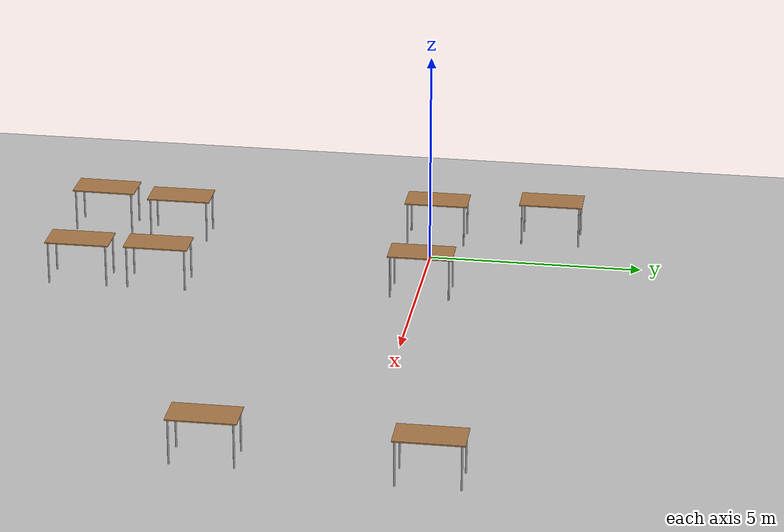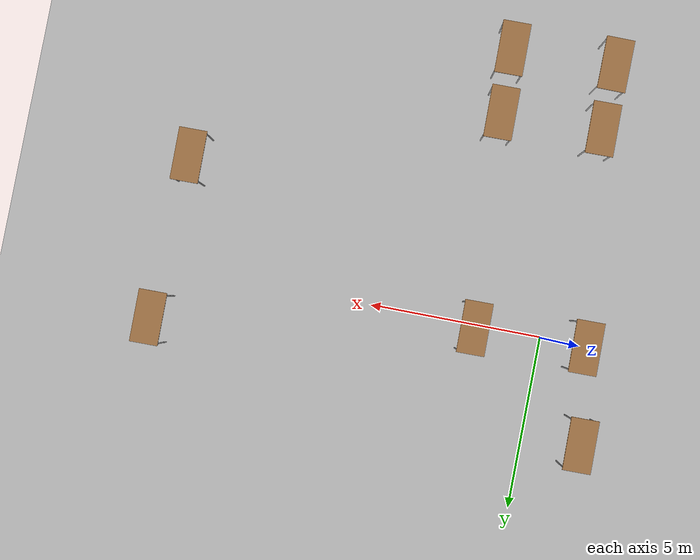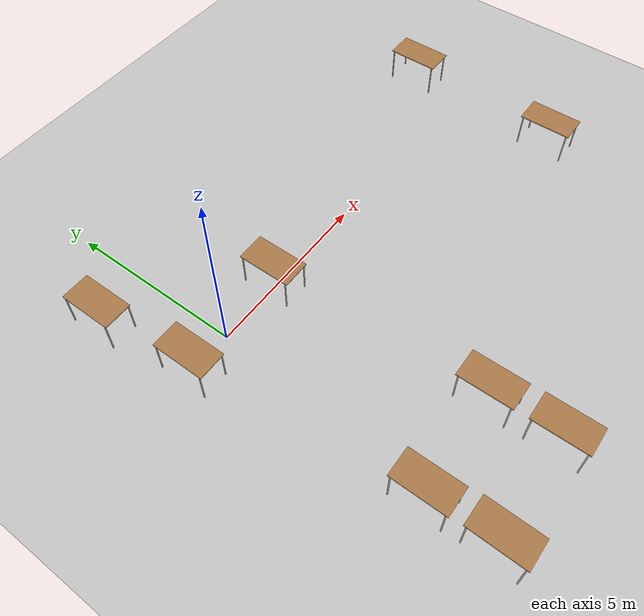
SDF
<sdf version="1.7">
 <world name="default">
  <model name="ground_plane">
   <static>1</static>
   <link name="link">
    <collision name="collision">
     <geometry><plane><normal>0 0 1</normal><size>100 100</size></plane></geometry>
     <surface><friction><ode><mu>100</mu><mu2>50</mu2></ode></friction></surface>
    </collision>
    <visual name="visual">
     <cast_shadows>0</cast_shadows>
     <geometry><plane><normal>0 0 1</normal><size>100 100</size></plane></geometry>
     <material>
      <script><uri>file://media/materials/scripts/gazebo.material</uri><name>Gazebo/Grey</name></script>
     </material>
    </visual>
   </link>
  </model>
  <model name="table_clone_4">
   <static>1</static>
   <link name="link">
    <collision name="surface">
     <pose>0 0 1 0 -0 0</pose>
     <geometry><box><size>1.5 0.8 0.03</size></box></geometry>
     <surface><friction><ode><mu>0.6</mu><mu2>0.6</mu2></ode></friction></surface>
    </collision>
    <visual name="visual1">
     <pose>0 0 1 0 -0 0</pose>
     <geometry><box><size>1.5 0.8 0.03</size></box></geometry>
     <material>
      <script><uri>file://media/materials/scripts/gazebo.material</uri><name>Gazebo/Wood</name></script>
     </material>
    </visual>
    <collision name="front_left_leg">
     <pose>0.68 0.38 0.5 0 -0 0</pose>
     <geometry><cylinder><radius>0.02</radius><length>1</length></cylinder></geometry>
    </collision>
    <visual name="front_left_leg">
     <pose>0.68 0.38 0.5 0 -0 0</pose>
     <geometry><cylinder><radius>0.02</radius><length>1</length></cylinder></geometry>
     <material>
      <script><uri>file://media/materials/scripts/gazebo.material</uri><name>Gazebo/Grey</name></script>
     </material>
    </visual>
    <collision name="front_right_leg">
     <pose>0.68 -0.38 0.5 0 -0 0</pose>
     <geometry><cylinder><radius>0.02</radius><length>1</length></cylinder></geometry>
    </collision>
    <visual name="front_right_leg">
     <pose>0.68 -0.38 0.5 0 -0 0</pose>
     <geometry><cylinder><radius>0.02</radius><length>1</length></cylinder></geometry>
     <material>
      <script><uri>file://media/materials/scripts/gazebo.material</uri><name>Gazebo/Grey</name></script>
     </material>
    </visual>
    <collision name="back_right_leg">
     <pose>-0.68 -0.38 0.5 0 -0 0</pose>
     <geometry><cylinder><radius>0.02</radius><length>1</length></cylinder></geometry>
    </collision>
    <visual name="back_right_leg">
     <pose>-0.68 -0.38 0.5 0 -0 0</pose>
     <geometry><cylinder><radius>0.02</radius><length>1</length></cylinder></geometry>
     <material>
      <script><uri>file://media/materials/scripts/gazebo.material</uri><name>Gazebo/Grey</name></script>
     </material>
    </visual>
    <collision name="back_left_leg">
     <pose>-0.68 0.38 0.5 0 -0 0</pose>
     <geometry><cylinder><radius>0.02</radius><length>1</length></cylinder></geometry>
    </collision>
    <visual name="back_left_leg">
     <pose>-0.68 0.38 0.5 0 -0 0</pose>
     <geometry><cylinder><radius>0.02</radius><length>1</length></cylinder></geometry>
     <material>
      <script><uri>file://media/materials/scripts/gazebo.material</uri><name>Gazebo/Grey</name></script>
     </material>
    </visual>
   </link>
   <pose>-0.492855 -7.93316 0.109475 0 0 -1.57944</pose>
  </model>
  <model name="table_clone_5">
   <static>1</static>
   <link name="link">
    <collision name="surface">
     <pose>0 0 1 0 -0 0</pose>
     <geometry><box><size>1.5 0.8 0.03</size></box></geometry>
     <surface><friction><ode><mu>0.6</mu><mu2>0.6</mu2></ode></friction></surface>
    </collision>
    <visual name="visual1">
     <pose>0 0 1 0 -0 0</pose>
     <geometry><box><size>1.5 0.8 0.03</size></box></geometry>
     <material>
      <script><uri>file://media/materials/scripts/gazebo.material</uri><name>Gazebo/Wood</name></script>
     </material>
    </visual>
    <collision name="front_left_leg">
     <pose>0.68 0.38 0.5 0 -0 0</pose>
     <geometry><cylinder><radius>0.02</radius><length>1</length></cylinder></geometry>
    </collision>
    <visual name="front_left_leg">
     <pose>0.68 0.38 0.5 0 -0 0</pose>
     <geometry><cylinder><radius>0.02</radius><length>1</length></cylinder></geometry>
     <material>
      <script><uri>file://media/materials/scripts/gazebo.material</uri><name>Gazebo/Grey</name></script>
     </material>
    </visual>
    <collision name="front_right_leg">
     <pose>0.68 -0.38 0.5 0 -0 0</pose>
     <geometry><cylinder><radius>0.02</radius><length>1</length></cylinder></geometry>
    </collision>
    <visual name="front_right_leg">
     <pose>0.68 -0.38 0.5 0 -0 0</pose>
     <geometry><cylinder><radius>0.02</radius><length>1</length></cylinder></geometry>
     <material>
      <script><uri>file://media/materials/scripts/gazebo.material</uri><name>Gazebo/Grey</name></script>
     </material>
    </visual>
    <collision name="back_right_leg">
     <pose>-0.68 -0.38 0.5 0 -0 0</pose>
     <geometry><cylinder><radius>0.02</radius><length>1</length></cylinder></geometry>
    </collision>
    <visual name="back_right_leg">
     <pose>-0.68 -0.38 0.5 0 -0 0</pose>
     <geometry><cylinder><radius>0.02</radius><length>1</length></cylinder></geometry>
     <material>
      <script><uri>file://media/materials/scripts/gazebo.material</uri><name>Gazebo/Grey</name></script>
     </material>
    </visual>
    <collision name="back_left_leg">
     <pose>-0.68 0.38 0.5 0 -0 0</pose>
     <geometry><cylinder><radius>0.02</radius><length>1</length></cylinder></geometry>
    </collision>
    <visual name="back_left_leg">
     <pose>-0.68 0.38 0.5 0 -0 0</pose>
     <geometry><cylinder><radius>0.02</radius><length>1</length></cylinder></geometry>
     <material>
      <script><uri>file://media/materials/scripts/gazebo.material</uri><name>Gazebo/Grey</name></script>
     </material>
    </visual>
   </link>
   <pose>2.42405 -7.87532 0 0 0 -1.56324</pose>
  </model>
  <model name="table_clone_5_clone">
   <static>1</static>
   <link name="link">
    <collision name="surface">
     <pose>0 0 1 0 -0 0</pose>
     <geometry><box><size>1.5 0.8 0.03</size></box></geometry>
     <surface><friction><ode><mu>0.6</mu><mu2>0.6</mu2></ode></friction></surface>
    </collision>
    <visual name="visual1">
     <pose>0 0 1 0 -0 0</pose>
     <geometry><box><size>1.5 0.8 0.03</size></box></geometry>
     <material>
      <script><uri>file://media/materials/scripts/gazebo.material</uri><name>Gazebo/Wood</name></script>
     </material>
    </visual>
    <collision name="front_left_leg">
     <pose>0.68 0.38 0.5 0 -0 0</pose>
     <geometry><cylinder><radius>0.02</radius><length>1</length></cylinder></geometry>
    </collision>
    <visual name="front_left_leg">
     <pose>0.68 0.38 0.5 0 -0 0</pose>
     <geometry><cylinder><radius>0.02</radius><length>1</length></cylinder></geometry>
     <material>
      <script><uri>file://media/materials/scripts/gazebo.material</uri><name>Gazebo/Grey</name></script>
     </material>
    </visual>
    <collision name="front_right_leg">
     <pose>0.68 -0.38 0.5 0 -0 0</pose>
     <geometry><cylinder><radius>0.02</radius><length>1</length></cylinder></geometry>
    </collision>
    <visual name="front_right_leg">
     <pose>0.68 -0.38 0.5 0 -0 0</pose>
     <geometry><cylinder><radius>0.02</radius><length>1</length></cylinder></geometry>
     <material>
      <script><uri>file://media/materials/scripts/gazebo.material</uri><name>Gazebo/Grey</name></script>
     </material>
    </visual>
    <collision name="back_right_leg">
     <pose>-0.68 -0.38 0.5 0 -0 0</pose>
     <geometry><cylinder><radius>0.02</radius><length>1</length></cylinder></geometry>
    </collision>
    <visual name="back_right_leg">
     <pose>-0.68 -0.38 0.5 0 -0 0</pose>
     <geometry><cylinder><radius>0.02</radius><length>1</length></cylinder></geometry>
     <material>
      <script><uri>file://media/materials/scripts/gazebo.material</uri><name>Gazebo/Grey</name></script>
     </material>
    </visual>
    <collision name="back_left_leg">
     <pose>-0.68 0.38 0.5 0 -0 0</pose>
     <geometry><cylinder><radius>0.02</radius><length>1</length></cylinder></geometry>
    </collision>
    <visual name="back_left_leg">
     <pose>-0.68 0.38 0.5 0 -0 0</pose>
     <geometry><cylinder><radius>0.02</radius><length>1</length></cylinder></geometry>
     <material>
      <script><uri>file://media/materials/scripts/gazebo.material</uri><name>Gazebo/Grey</name></script>
     </material>
    </visual>
   </link>
   <pose>2.39012 -6.02539 0 0 0 -1.56324</pose>
  </model>
  <model name="table_clone_5_clone_0">
   <static>1</static>
   <link name="link">
    <collision name="surface">
     <pose>0 0 1 0 -0 0</pose>
     <geometry><box><size>1.5 0.8 0.03</size></box></geometry>
     <surface><friction><ode><mu>0.6</mu><mu2>0.6</mu2></ode></friction></surface>
    </collision>
    <visual name="visual1">
     <pose>0 0 1 0 -0 0</pose>
     <geometry><box><size>1.5 0.8 0.03</size></box></geometry>
     <material>
      <script><uri>file://media/materials/scripts/gazebo.material</uri><name>Gazebo/Wood</name></script>
     </material>
    </visual>
    <collision name="front_left_leg">
     <pose>0.68 0.38 0.5 0 -0 0</pose>
     <geometry><cylinder><radius>0.02</radius><length>1</length></cylinder></geometry>
    </collision>
    <visual name="front_left_leg">
     <pose>0.68 0.38 0.5 0 -0 0</pose>
     <geometry><cylinder><radius>0.02</radius><length>1</length></cylinder></geometry>
     <material>
      <script><uri>file://media/materials/scripts/gazebo.material</uri><name>Gazebo/Grey</name></script>
     </material>
    </visual>
    <collision name="front_right_leg">
     <pose>0.68 -0.38 0.5 0 -0 0</pose>
     <geometry><cylinder><radius>0.02</radius><length>1</length></cylinder></geometry>
    </collision>
    <visual name="front_right_leg">
     <pose>0.68 -0.38 0.5 0 -0 0</pose>
     <geometry><cylinder><radius>0.02</radius><length>1</length></cylinder></geometry>
     <material>
      <script><uri>file://media/materials/scripts/gazebo.material</uri><name>Gazebo/Grey</name></script>
     </material>
    </visual>
    <collision name="back_right_leg">
     <pose>-0.68 -0.38 0.5 0 -0 0</pose>
     <geometry><cylinder><radius>0.02</radius><length>1</length></cylinder></geometry>
    </collision>
    <visual name="back_right_leg">
     <pose>-0.68 -0.38 0.5 0 -0 0</pose>
     <geometry><cylinder><radius>0.02</radius><length>1</length></cylinder></geometry>
     <material>
      <script><uri>file://media/materials/scripts/gazebo.material</uri><name>Gazebo/Grey</name></script>
     </material>
    </visual>
    <collision name="back_left_leg">
     <pose>-0.68 0.38 0.5 0 -0 0</pose>
     <geometry><cylinder><radius>0.02</radius><length>1</length></cylinder></geometry>
    </collision>
    <visual name="back_left_leg">
     <pose>-0.68 0.38 0.5 0 -0 0</pose>
     <geometry><cylinder><radius>0.02</radius><length>1</length></cylinder></geometry>
     <material>
      <script><uri>file://media/materials/scripts/gazebo.material</uri><name>Gazebo/Grey</name></script>
     </material>
    </visual>
   </link>
   <pose>-0.50173 -6.10953 0 0 0 -1.56324</pose>
  </model>
  <model name="table_clone_5_clone_clone">
   <static>1</static>
   <link name="link">
    <collision name="surface">
     <pose>0 0 1 0 -0 0</pose>
     <geometry><box><size>1.5 0.8 0.03</size></box></geometry>
     <surface><friction><ode><mu>0.6</mu><mu2>0.6</mu2></ode></friction></surface>
    </collision>
    <visual name="visual1">
     <pose>0 0 1 0 -0 0</pose>
     <geometry><box><size>1.5 0.8 0.03</size></box></geometry>
     <material>
      <script><uri>file://media/materials/scripts/gazebo.material</uri><name>Gazebo/Wood</name></script>
     </material>
    </visual>
    <collision name="front_left_leg">
     <pose>0.68 0.38 0.5 0 -0 0</pose>
     <geometry><cylinder><radius>0.02</radius><length>1</length></cylinder></geometry>
    </collision>
    <visual name="front_left_leg">
     <pose>0.68 0.38 0.5 0 -0 0</pose>
     <geometry><cylinder><radius>0.02</radius><length>1</length></cylinder></geometry>
     <material>
      <script><uri>file://media/materials/scripts/gazebo.material</uri><name>Gazebo/Grey</name></script>
     </material>
    </visual>
    <collision name="front_right_leg">
     <pose>0.68 -0.38 0.5 0 -0 0</pose>
     <geometry><cylinder><radius>0.02</radius><length>1</length></cylinder></geometry>
    </collision>
    <visual name="front_right_leg">
     <pose>0.68 -0.38 0.5 0 -0 0</pose>
     <geometry><cylinder><radius>0.02</radius><length>1</length></cylinder></geometry>
     <material>
      <script><uri>file://media/materials/scripts/gazebo.material</uri><name>Gazebo/Grey</name></script>
     </material>
    </visual>
    <collision name="back_right_leg">
     <pose>-0.68 -0.38 0.5 0 -0 0</pose>
     <geometry><cylinder><radius>0.02</radius><length>1</length></cylinder></geometry>
    </collision>
    <visual name="back_right_leg">
     <pose>-0.68 -0.38 0.5 0 -0 0</pose>
     <geometry><cylinder><radius>0.02</radius><length>1</length></cylinder></geometry>
     <material>
      <script><uri>file://media/materials/scripts/gazebo.material</uri><name>Gazebo/Grey</name></script>
     </material>
    </visual>
    <collision name="back_left_leg">
     <pose>-0.68 0.38 0.5 0 -0 0</pose>
     <geometry><cylinder><radius>0.02</radius><length>1</length></cylinder></geometry>
    </collision>
    <visual name="back_left_leg">
     <pose>-0.68 0.38 0.5 0 -0 0</pose>
     <geometry><cylinder><radius>0.02</radius><length>1</length></cylinder></geometry>
     <material>
      <script><uri>file://media/materials/scripts/gazebo.material</uri><name>Gazebo/Grey</name></script>
     </material>
    </visual>
   </link>
   <pose>10.8155 -3.18276 0 0 0 -1.56324</pose>
  </model>
  <model name="table_clone_5_clone_clone_clone">
   <static>1</static>
   <link name="link">
    <collision name="surface">
     <pose>0 0 1 0 -0 0</pose>
     <geometry><box><size>1.5 0.8 0.03</size></box></geometry>
     <surface><friction><ode><mu>0.6</mu><mu2>0.6</mu2></ode></friction></surface>
    </collision>
    <visual name="visual1">
     <pose>0 0 1 0 -0 0</pose>
     <geometry><box><size>1.5 0.8 0.03</size></box></geometry>
     <material>
      <script><uri>file://media/materials/scripts/gazebo.material</uri><name>Gazebo/Wood</name></script>
     </material>
    </visual>
    <collision name="front_left_leg">
     <pose>0.68 0.38 0.5 0 -0 0</pose>
     <geometry><cylinder><radius>0.02</radius><length>1</length></cylinder></geometry>
    </collision>
    <visual name="front_left_leg">
     <pose>0.68 0.38 0.5 0 -0 0</pose>
     <geometry><cylinder><radius>0.02</radius><length>1</length></cylinder></geometry>
     <material>
      <script><uri>file://media/materials/scripts/gazebo.material</uri><name>Gazebo/Grey</name></script>
     </material>
    </visual>
    <collision name="front_right_leg">
     <pose>0.68 -0.38 0.5 0 -0 0</pose>
     <geometry><cylinder><radius>0.02</radius><length>1</length></cylinder></geometry>
    </collision>
    <visual name="front_right_leg">
     <pose>0.68 -0.38 0.5 0 -0 0</pose>
     <geometry><cylinder><radius>0.02</radius><length>1</length></cylinder></geometry>
     <material>
      <script><uri>file://media/materials/scripts/gazebo.material</uri><name>Gazebo/Grey</name></script>
     </material>
    </visual>
    <collision name="back_right_leg">
     <pose>-0.68 -0.38 0.5 0 -0 0</pose>
     <geometry><cylinder><radius>0.02</radius><length>1</length></cylinder></geometry>
    </collision>
    <visual name="back_right_leg">
     <pose>-0.68 -0.38 0.5 0 -0 0</pose>
     <geometry><cylinder><radius>0.02</radius><length>1</length></cylinder></geometry>
     <material>
      <script><uri>file://media/materials/scripts/gazebo.material</uri><name>Gazebo/Grey</name></script>
     </material>
    </visual>
    <collision name="back_left_leg">
     <pose>-0.68 0.38 0.5 0 -0 0</pose>
     <geometry><cylinder><radius>0.02</radius><length>1</length></cylinder></geometry>
    </collision>
    <visual name="back_left_leg">
     <pose>-0.68 0.38 0.5 0 -0 0</pose>
     <geometry><cylinder><radius>0.02</radius><length>1</length></cylinder></geometry>
     <material>
      <script><uri>file://media/materials/scripts/gazebo.material</uri><name>Gazebo/Grey</name></script>
     </material>
    </visual>
   </link>
   <pose>11.0448 1.4975 0 0 0 -1.56324</pose>
  </model>
  <model name="table_clone_5_clone_clone_clone_0">
   <static>1</static>
   <link name="link">
    <collision name="surface">
     <pose>0 0 1 0 -0 0</pose>
     <geometry><box><size>1.5 0.8 0.03</size></box></geometry>
     <surface><friction><ode><mu>0.6</mu><mu2>0.6</mu2></ode></friction></surface>
    </collision>
    <visual name="visual1">
     <pose>0 0 1 0 -0 0</pose>
     <geometry><box><size>1.5 0.8 0.03</size></box></geometry>
     <material>
      <script><uri>file://media/materials/scripts/gazebo.material</uri><name>Gazebo/Wood</name></script>
     </material>
    </visual>
    <collision name="front_left_leg">
     <pose>0.68 0.38 0.5 0 -0 0</pose>
     <geometry><cylinder><radius>0.02</radius><length>1</length></cylinder></geometry>
    </collision>
    <visual name="front_left_leg">
     <pose>0.68 0.38 0.5 0 -0 0</pose>
     <geometry><cylinder><radius>0.02</radius><length>1</length></cylinder></geometry>
     <material>
      <script><uri>file://media/materials/scripts/gazebo.material</uri><name>Gazebo/Grey</name></script>
     </material>
    </visual>
    <collision name="front_right_leg">
     <pose>0.68 -0.38 0.5 0 -0 0</pose>
     <geometry><cylinder><radius>0.02</radius><length>1</length></cylinder></geometry>
    </collision>
    <visual name="front_right_leg">
     <pose>0.68 -0.38 0.5 0 -0 0</pose>
     <geometry><cylinder><radius>0.02</radius><length>1</length></cylinder></geometry>
     <material>
      <script><uri>file://media/materials/scripts/gazebo.material</uri><name>Gazebo/Grey</name></script>
     </material>
    </visual>
    <collision name="back_right_leg">
     <pose>-0.68 -0.38 0.5 0 -0 0</pose>
     <geometry><cylinder><radius>0.02</radius><length>1</length></cylinder></geometry>
    </collision>
    <visual name="back_right_leg">
     <pose>-0.68 -0.38 0.5 0 -0 0</pose>
     <geometry><cylinder><radius>0.02</radius><length>1</length></cylinder></geometry>
     <material>
      <script><uri>file://media/materials/scripts/gazebo.material</uri><name>Gazebo/Grey</name></script>
     </material>
    </visual>
    <collision name="back_left_leg">
     <pose>-0.68 0.38 0.5 0 -0 0</pose>
     <geometry><cylinder><radius>0.02</radius><length>1</length></cylinder></geometry>
    </collision>
    <visual name="back_left_leg">
     <pose>-0.68 0.38 0.5 0 -0 0</pose>
     <geometry><cylinder><radius>0.02</radius><length>1</length></cylinder></geometry>
     <material>
      <script><uri>file://media/materials/scripts/gazebo.material</uri><name>Gazebo/Grey</name></script>
     </material>
    </visual>
   </link>
   <pose>-1.16663 0.0265 0 0 0 -1.56324</pose>
  </model>
  <model name="table_clone_5_clone_clone_clone_1">
   <static>1</static>
   <link name="link">
    <collision name="surface">
     <pose>0 0 1 0 -0 0</pose>
     <geometry><box><size>1.5 0.8 0.03</size></box></geometry>
     <surface><friction><ode><mu>0.6</mu><mu2>0.6</mu2></ode></friction></surface>
    </collision>
    <visual name="visual1">
     <pose>0 0 1 0 -0 0</pose>
     <geometry><box><size>1.5 0.8 0.03</size></box></geometry>
     <material>
      <script><uri>file://media/materials/scripts/gazebo.material</uri><name>Gazebo/Wood</name></script>
     </material>
    </visual>
    <collision name="front_left_leg">
     <pose>0.68 0.38 0.5 0 -0 0</pose>
     <geometry><cylinder><radius>0.02</radius><length>1</length></cylinder></geometry>
    </collision>
    <visual name="front_left_leg">
     <pose>0.68 0.38 0.5 0 -0 0</pose>
     <geometry><cylinder><radius>0.02</radius><length>1</length></cylinder></geometry>
     <material>
      <script><uri>file://media/materials/scripts/gazebo.material</uri><name>Gazebo/Grey</name></script>
     </material>
    </visual>
    <collision name="front_right_leg">
     <pose>0.68 -0.38 0.5 0 -0 0</pose>
     <geometry><cylinder><radius>0.02</radius><length>1</length></cylinder></geometry>
    </collision>
    <visual name="front_right_leg">
     <pose>0.68 -0.38 0.5 0 -0 0</pose>
     <geometry><cylinder><radius>0.02</radius><length>1</length></cylinder></geometry>
     <material>
      <script><uri>file://media/materials/scripts/gazebo.material</uri><name>Gazebo/Grey</name></script>
     </material>
    </visual>
    <collision name="back_right_leg">
     <pose>-0.68 -0.38 0.5 0 -0 0</pose>
     <geometry><cylinder><radius>0.02</radius><length>1</length></cylinder></geometry>
    </collision>
    <visual name="back_right_leg">
     <pose>-0.68 -0.38 0.5 0 -0 0</pose>
     <geometry><cylinder><radius>0.02</radius><length>1</length></cylinder></geometry>
     <material>
      <script><uri>file://media/materials/scripts/gazebo.material</uri><name>Gazebo/Grey</name></script>
     </material>
    </visual>
    <collision name="back_left_leg">
     <pose>-0.68 0.38 0.5 0 -0 0</pose>
     <geometry><cylinder><radius>0.02</radius><length>1</length></cylinder></geometry>
    </collision>
    <visual name="back_left_leg">
     <pose>-0.68 0.38 0.5 0 -0 0</pose>
     <geometry><cylinder><radius>0.02</radius><length>1</length></cylinder></geometry>
     <material>
      <script><uri>file://media/materials/scripts/gazebo.material</uri><name>Gazebo/Grey</name></script>
     </material>
    </visual>
   </link>
   <pose>2.01011 0.072851 0 0 0 -1.56324</pose>
  </model>
  <model name="table_clone_5_clone_clone_clone_2_clone">
   <static>1</static>
   <link name="link">
    <collision name="surface">
     <pose>0 0 1 0 -0 0</pose>
     <geometry><box><size>1.5 0.8 0.03</size></box></geometry>
     <surface><friction><ode><mu>0.6</mu><mu2>0.6</mu2></ode></friction></surface>
    </collision>
    <visual name="visual1">
     <pose>0 0 1 0 -0 0</pose>
     <geometry><box><size>1.5 0.8 0.03</size></box></geometry>
     <material>
      <script><uri>file://media/materials/scripts/gazebo.material</uri><name>Gazebo/Wood</name></script>
     </material>
    </visual>
    <collision name="front_left_leg">
     <pose>0.68 0.38 0.5 0 -0 0</pose>
     <geometry><cylinder><radius>0.02</radius><length>1</length></cylinder></geometry>
    </collision>
    <visual name="front_left_leg">
     <pose>0.68 0.38 0.5 0 -0 0</pose>
     <geometry><cylinder><radius>0.02</radius><length>1</length></cylinder></geometry>
     <material>
      <script><uri>file://media/materials/scripts/gazebo.material</uri><name>Gazebo/Grey</name></script>
     </material>
    </visual>
    <collision name="front_right_leg">
     <pose>0.68 -0.38 0.5 0 -0 0</pose>
     <geometry><cylinder><radius>0.02</radius><length>1</length></cylinder></geometry>
    </collision>
    <visual name="front_right_leg">
     <pose>0.68 -0.38 0.5 0 -0 0</pose>
     <geometry><cylinder><radius>0.02</radius><length>1</length></cylinder></geometry>
     <material>
      <script><uri>file://media/materials/scripts/gazebo.material</uri><name>Gazebo/Grey</name></script>
     </material>
    </visual>
    <collision name="back_right_leg">
     <pose>-0.68 -0.38 0.5 0 -0 0</pose>
     <geometry><cylinder><radius>0.02</radius><length>1</length></cylinder></geometry>
    </collision>
    <visual name="back_right_leg">
     <pose>-0.68 -0.38 0.5 0 -0 0</pose>
     <geometry><cylinder><radius>0.02</radius><length>1</length></cylinder></geometry>
     <material>
      <script><uri>file://media/materials/scripts/gazebo.material</uri><name>Gazebo/Grey</name></script>
     </material>
    </visual>
    <collision name="back_left_leg">
     <pose>-0.68 0.38 0.5 0 -0 0</pose>
     <geometry><cylinder><radius>0.02</radius><length>1</length></cylinder></geometry>
    </collision>
    <visual name="back_left_leg">
     <pose>-0.68 0.38 0.5 0 -0 0</pose>
     <geometry><cylinder><radius>0.02</radius><length>1</length></cylinder></geometry>
     <material>
      <script><uri>file://media/materials/scripts/gazebo.material</uri><name>Gazebo/Grey</name></script>
     </material>
    </visual>
   </link>
   <pose>-1.50771 2.74021 0 0 0 -1.56324</pose>
  </model>
 </world>
</sdf>
